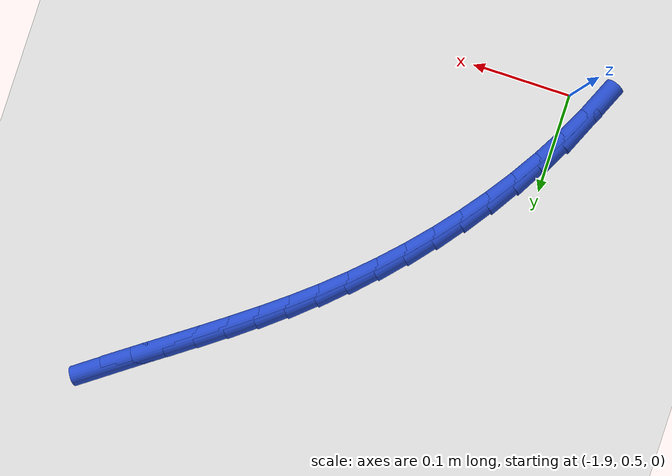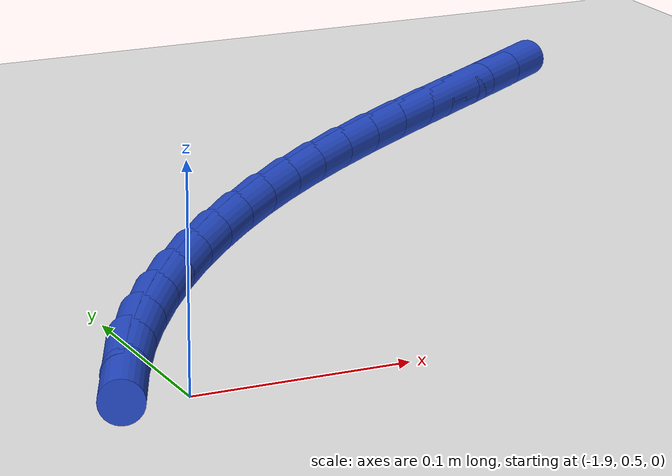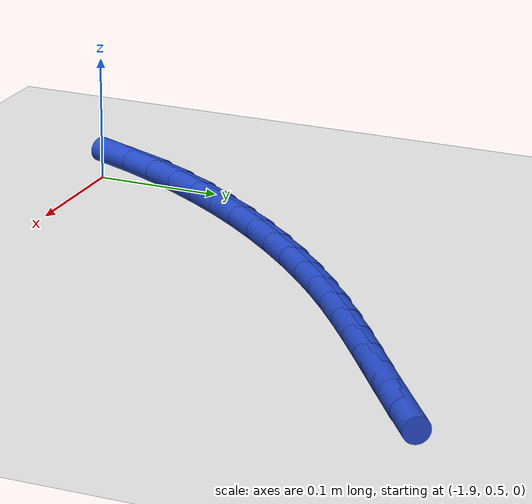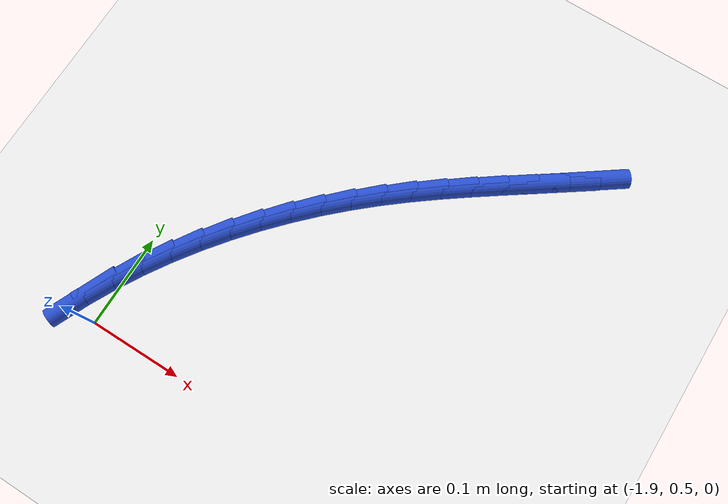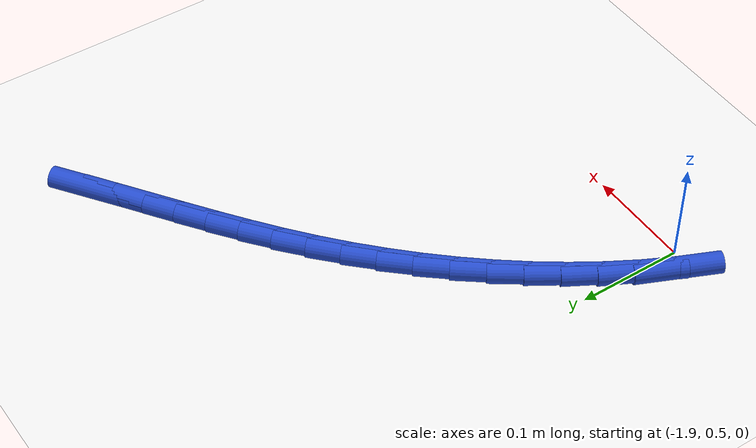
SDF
<sdf version="1.6">
 <world name="default">
  <model name="ground_plane">
   <static>1</static>
   <link name="link">
    <collision name="collision">
     <geometry><plane><normal>0 0 1</normal><size>100 100</size></plane></geometry>
     <surface><friction><ode><mu>100</mu><mu2>50</mu2></ode></friction></surface>
    </collision>
    <visual name="visual">
     <cast_shadows>0</cast_shadows>
     <geometry><plane><normal>0 0 1</normal><size>100 100</size></plane></geometry>
     <material>
      <script><uri>file://media/materials/scripts/gazebo.material</uri><name>Gazebo/WhiteGlow</name></script>
     </material>
    </visual>
   </link>
  </model>
  <model name="line">
   <link name="link_70">
    <pose>-1.5538344988326436 0.8899676914311164 0.01 0 1.57 0.6235601310919122</pose>
    <collision name="collision">
     <geometry><cylinder><radius>0.01</radius><length>0.08</length></cylinder></geometry>
    </collision>
    <visual name="visual">
     <material>
      <script><name>Gazebo/Blue</name><uri>file://media/materials/scripts/gazebo.material</uri></script>
     </material>
     <geometry><cylinder><radius>0.01</radius><length>0.08</length></cylinder></geometry>
    </visual>
   </link>
   <link name="link_71">
    <pose>-1.5792913995591276 0.8716566106178237 0.01 0 1.57 0.6158823009508877</pose>
    <collision name="collision">
     <geometry><cylinder><radius>0.01</radius><length>0.08</length></cylinder></geometry>
    </collision>
    <visual name="visual">
     <material>
      <script><name>Gazebo/Blue</name><uri>file://media/materials/scripts/gazebo.material</uri></script>
     </material>
     <geometry><cylinder><radius>0.01</radius><length>0.08</length></cylinder></geometry>
    </visual>
   </link>
   <link name="link_72">
    <pose>-1.6046730957157531 0.8536937090695504 0.01 0 1.57 0.6154125055298301</pose>
    <collision name="collision">
     <geometry><cylinder><radius>0.01</radius><length>0.08</length></cylinder></geometry>
    </collision>
    <visual name="visual">
     <material>
      <script><name>Gazebo/Blue</name><uri>file://media/materials/scripts/gazebo.material</uri></script>
     </material>
     <geometry><cylinder><radius>0.01</radius><length>0.08</length></cylinder></geometry>
    </visual>
   </link>
   <link name="link_73">
    <pose>-1.6299059856259492 0.8358539049784266 0.01 0 1.57 0.6222893065256876</pose>
    <collision name="collision">
     <geometry><cylinder><radius>0.01</radius><length>0.08</length></cylinder></geometry>
    </collision>
    <visual name="visual">
     <material>
      <script><name>Gazebo/Blue</name><uri>file://media/materials/scripts/gazebo.material</uri></script>
     </material>
     <geometry><cylinder><radius>0.01</radius><length>0.08</length></cylinder></geometry>
    </visual>
   </link>
   <link name="link_74">
    <pose>-1.6549164676131471 0.8179121165365829 0.01 0 1.57 0.6365510201963749</pose>
    <collision name="collision">
     <geometry><cylinder><radius>0.01</radius><length>0.08</length></cylinder></geometry>
    </collision>
    <visual name="visual">
     <material>
      <script><name>Gazebo/Blue</name><uri>file://media/materials/scripts/gazebo.material</uri></script>
     </material>
     <geometry><cylinder><radius>0.01</radius><length>0.08</length></cylinder></geometry>
    </visual>
   </link>
   <link name="link_75">
    <pose>-1.6796309400007756 0.7996432619361502 0.01 0 1.57 0.658121693808246</pose>
    <collision name="collision">
     <geometry><cylinder><radius>0.01</radius><length>0.08</length></cylinder></geometry>
    </collision>
    <visual name="visual">
     <material>
      <script><name>Gazebo/Blue</name><uri>file://media/materials/scripts/gazebo.material</uri></script>
     </material>
     <geometry><cylinder><radius>0.01</radius><length>0.08</length></cylinder></geometry>
    </visual>
   </link>
   <link name="link_76">
    <pose>-1.7039758011122648 0.7808222593692582 0.01 0 1.57 0.6867896515745022</pose>
    <collision name="collision">
     <geometry><cylinder><radius>0.01</radius><length>0.08</length></cylinder></geometry>
    </collision>
    <visual name="visual">
     <material>
      <script><name>Gazebo/Blue</name><uri>file://media/materials/scripts/gazebo.material</uri></script>
     </material>
     <geometry><cylinder><radius>0.01</radius><length>0.08</length></cylinder></geometry>
    </visual>
   </link>
   <link name="link_77">
    <pose>-1.7278774492710447 0.7612240270280382 0.01 0 1.57 0.7217170669551196</pose>
    <collision name="collision">
     <geometry><cylinder><radius>0.01</radius><length>0.08</length></cylinder></geometry>
    </collision>
    <visual name="visual">
     <material>
      <script><name>Gazebo/Blue</name><uri>file://media/materials/scripts/gazebo.material</uri></script>
     </material>
     <geometry><cylinder><radius>0.01</radius><length>0.08</length></cylinder></geometry>
    </visual>
   </link>
   <link name="link_78">
    <pose>-1.7512598795507073 0.7406449069084274 0.01 0 1.57 0.7588670240874787</pose>
    <collision name="collision">
     <geometry><cylinder><radius>0.01</radius><length>0.08</length></cylinder></geometry>
    </collision>
    <visual name="visual">
     <material>
      <script><name>Gazebo/Blue</name><uri>file://media/materials/scripts/gazebo.material</uri></script>
     </material>
     <geometry><cylinder><radius>0.01</radius><length>0.08</length></cylinder></geometry>
    </visual>
   </link>
   <link name="link_79">
    <pose>-1.7740276777970292 0.719054264835362 0.01 0 1.57 0.7966256752475562</pose>
    <collision name="collision">
     <geometry><cylinder><radius>0.01</radius><length>0.08</length></cylinder></geometry>
    </collision>
    <visual name="visual">
     <material>
      <script><name>Gazebo/Blue</name><uri>file://media/materials/scripts/gazebo.material</uri></script>
     </material>
     <geometry><cylinder><radius>0.01</radius><length>0.08</length></cylinder></geometry>
    </visual>
   </link>
   <link name="link_80">
    <pose>-1.796076041216017 0.6965051617924293 0.01 0 1.57 0.8352670621990551</pose>
    <collision name="collision">
     <geometry><cylinder><radius>0.01</radius><length>0.08</length></cylinder></geometry>
    </collision>
    <visual name="visual">
     <material>
      <script><name>Gazebo/Blue</name><uri>file://media/materials/scripts/gazebo.material</uri></script>
     </material>
     <geometry><cylinder><radius>0.01</radius><length>0.08</length></cylinder></geometry>
    </visual>
   </link>
   <link name="link_81">
    <pose>-1.8173001057753788 0.6730512046729068 0.01 0 1.57 0.8750738905959433</pose>
    <collision name="collision">
     <geometry><cylinder><radius>0.01</radius><length>0.08</length></cylinder></geometry>
    </collision>
    <visual name="visual">
     <material>
      <script><name>Gazebo/Blue</name><uri>file://media/materials/scripts/gazebo.material</uri></script>
     </material>
     <geometry><cylinder><radius>0.01</radius><length>0.08</length></cylinder></geometry>
    </visual>
   </link>
   <link name="link_82">
    <pose>-1.8375950074428187 0.6487460003700712 0.01 0 1.57 0.9163283317167354</pose>
    <collision name="collision">
     <geometry><cylinder><radius>0.01</radius><length>0.08</length></cylinder></geometry>
    </collision>
    <visual name="visual">
     <material>
      <script><name>Gazebo/Blue</name><uri>file://media/materials/scripts/gazebo.material</uri></script>
     </material>
     <geometry><cylinder><radius>0.01</radius><length>0.08</length></cylinder></geometry>
    </visual>
   </link>
   <link name="link_83">
    <pose>-1.8568558821860441 0.6236431557772004 0.01 0 1.57 0.9593133555917333</pose>
    <collision name="collision">
     <geometry><cylinder><radius>0.01</radius><length>0.08</length></cylinder></geometry>
    </collision>
    <visual name="visual">
     <material>
      <script><name>Gazebo/Blue</name><uri>file://media/materials/scripts/gazebo.material</uri></script>
     </material>
     <geometry><cylinder><radius>0.01</radius><length>0.08</length></cylinder></geometry>
    </visual>
   </link>
   <link name="link_84">
    <pose>-1.8749778659727603 0.5977962777875713 0.01 0 1.57 1.0043124762310067</pose>
    <collision name="collision">
     <geometry><cylinder><radius>0.01</radius><length>0.08</length></cylinder></geometry>
    </collision>
    <visual name="visual">
     <material>
      <script><name>Gazebo/Blue</name><uri>file://media/materials/scripts/gazebo.material</uri></script>
     </material>
     <geometry><cylinder><radius>0.01</radius><length>0.08</length></cylinder></geometry>
    </visual>
   </link>
   <link name="link_85">
    <pose>-1.8918560947706737 0.5712589732944608 0.01 0 1.57 1.0516075235597864</pose>
    <collision name="collision">
     <geometry><cylinder><radius>0.01</radius><length>0.08</length></cylinder></geometry>
    </collision>
    <visual name="visual">
     <material>
      <script><name>Gazebo/Blue</name><uri>file://media/materials/scripts/gazebo.material</uri></script>
     </material>
     <geometry><cylinder><radius>0.01</radius><length>0.08</length></cylinder></geometry>
    </visual>
   </link>
   <link name="link_86">
    <pose>-1.9073857045474905 0.5440848491911467 0.01 0 1.57 1.1014739391544521</pose>
    <collision name="collision">
     <geometry><cylinder><radius>0.01</radius><length>0.08</length></cylinder></geometry>
    </collision>
    <visual name="visual">
     <material>
      <script><name>Gazebo/Blue</name><uri>file://media/materials/scripts/gazebo.material</uri></script>
     </material>
     <geometry><cylinder><radius>0.01</radius><length>0.08</length></cylinder></geometry>
    </visual>
   </link>
   <link name="link_87">
    <pose>-1.9214618312709162 0.5163275123709063 0.01 0 1.57 1.1541730070687857</pose>
    <collision name="collision">
     <geometry><cylinder><radius>0.01</radius><length>0.08</length></cylinder></geometry>
    </collision>
    <visual name="visual">
     <material>
      <script><name>Gazebo/Blue</name><uri>file://media/materials/scripts/gazebo.material</uri></script>
     </material>
     <geometry><cylinder><radius>0.01</radius><length>0.08</length></cylinder></geometry>
    </visual>
   </link>
  </model>
 </world>
</sdf>
